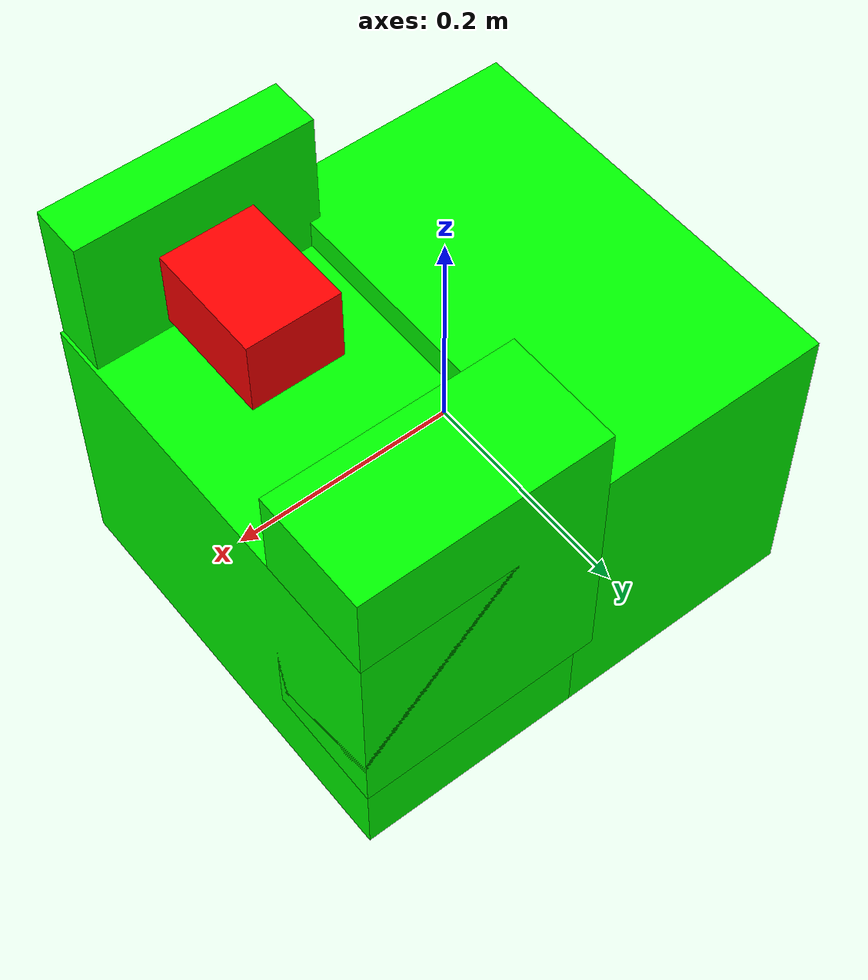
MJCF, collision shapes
<mujoco model="coffee_machine_24">
  <compiler autolimits="true" boundmass="0.01" angle="radian"/>
  <default>
    <default class="/">
      <default class="__VISUAL_MJT__">
        <geom contype="0" conaffinity="0" group="0"/>
      </default>
      <default class="__STRUCTURAL_MJT__">
        <geom contype="8" conaffinity="15" group="4" friction="0.90000000000000002 0.90000000000000002 0.001" solref="0.025000000000000001 1" solimp="0.998 0.998 0.001"/>
      </default>
      <default class="__DYNAMIC_MJT__">
        <geom contype="1" conaffinity="15" group="4" friction="0.90000000000000002 0.90000000000000002 0.001" solref="0.025000000000000001 1" solimp="0.998 0.998 0.001"/>
      </default>
    </default>
  </default>
  <asset>
    <material name="material_coffee_machine_backup_mat" class="/" specular="0.5" shininess="0.5" rgba="0.5 0.5 0.5 1"/>
    <material name="material_Coffee_Machine_Readout_Mat_Off" class="/" specular="0.5" shininess="0.5" rgba="0 0 0 1"/>
    <texture name="Coffee_Machine_Decal_Mat" type="2d" file="Coffee_Machine_Decal_AlbedoTransparency.png"/>
    <material name="material_Coffee_Machine_Decal_Mat" class="/" texture="Coffee_Machine_Decal_Mat" specular="0.5" shininess="0.5" rgba="1 1 1 1"/>
    <texture name="Coffee_Machine_Metal_Mat" type="2d" file="MetalBumpy_AlbedoTransparency.png"/>
    <material name="material_Coffee_Machine_Metal_Mat" class="/" texture="Coffee_Machine_Metal_Mat" specular="0.5" shininess="0.5" rgba="0.66176469999999998 0.66176469999999998 0.66176469999999998 1"/>
    <texture name="Coffee_Machine_Secondary4_Color_Mat" type="2d" file="BrushedIron_AlbedoTransparency.png"/>
    <material name="material_Coffee_Machine_Secondary4_Color_Mat" class="/" texture="Coffee_Machine_Secondary4_Color_Mat" specular="0.5" shininess="0.5" rgba="0.72058820000000001 0.72058820000000001 0.72058820000000001 1"/>
    <texture name="Coffee_Machine_Primary4_Color_Mat" type="2d" file="BumpyPlastic_Albedo.png"/>
    <material name="material_Coffee_Machine_Primary4_Color_Mat" class="/" texture="Coffee_Machine_Primary4_Color_Mat" specular="0.5" shininess="0.5" rgba="0.64705880000000005 0.64705880000000005 0.64705880000000005 1"/>
    <mesh name="coffee_machine_24_coffee_machine_24_0" class="/" file="coffee_machine_24_coffee_machine_24/coffee_machine_24_coffee_machine_24_0.obj" scale="1 1 1"/>
    <mesh name="coffee_machine_24_coffee_machine_24_1" class="/" file="coffee_machine_24_coffee_machine_24/coffee_machine_24_coffee_machine_24_1.obj" scale="1 1 1"/>
    <mesh name="coffee_machine_24_coffee_machine_24_2" class="/" file="coffee_machine_24_coffee_machine_24/coffee_machine_24_coffee_machine_24_2.obj" scale="1 1 1"/>
    <mesh name="coffee_machine_24_coffee_machine_24_3" class="/" file="coffee_machine_24_coffee_machine_24/coffee_machine_24_coffee_machine_24_3.obj" scale="1 1 1"/>
    <mesh name="coffee_machine_24_coffee_machine_24_4" class="/" file="coffee_machine_24_coffee_machine_24/coffee_machine_24_coffee_machine_24_4.obj" scale="1 1 1"/>
    <mesh name="coffee_machine_24_coffee_machine_24_5" class="/" file="coffee_machine_24_coffee_machine_24/coffee_machine_24_coffee_machine_24_5.obj" scale="1 1 1"/>
  </asset>
  <worldbody>
    <body name="coffee_machine_24">
      <joint name="coffee_machine_24_free" class="/" type="free" pos="0 0 0" axis="0 0 1" stiffness="0" range="0 0" armature="0" damping="0.10000000000000001" frictionloss="0"/>
      <body name="coffee_machine_24_coffee_machine_24" pos="-0.00114 -0.21033999966472389 -0.057759999999999999" quat="1 0 0 0">
        <geom name="coffee_machine_24_coffee_machine_24_0" class="__VISUAL_MJT__" type="mesh" material="material_coffee_machine_backup_mat" shellinertia="true" mesh="coffee_machine_24_coffee_machine_24_0"/>
        <geom name="coffee_machine_24_coffee_machine_24_1" class="__VISUAL_MJT__" type="mesh" material="material_Coffee_Machine_Readout_Mat_Off" shellinertia="true" mesh="coffee_machine_24_coffee_machine_24_1"/>
        <geom name="coffee_machine_24_coffee_machine_24_2" class="__VISUAL_MJT__" type="mesh" material="material_Coffee_Machine_Decal_Mat" shellinertia="false" mesh="coffee_machine_24_coffee_machine_24_2"/>
        <geom name="coffee_machine_24_coffee_machine_24_3" class="__VISUAL_MJT__" type="mesh" material="material_Coffee_Machine_Metal_Mat" shellinertia="false" mesh="coffee_machine_24_coffee_machine_24_3"/>
        <geom name="coffee_machine_24_coffee_machine_24_4" class="__VISUAL_MJT__" type="mesh" material="material_Coffee_Machine_Secondary4_Color_Mat" shellinertia="false" mesh="coffee_machine_24_coffee_machine_24_4"/>
        <geom name="coffee_machine_24_coffee_machine_24_5" class="__VISUAL_MJT__" type="mesh" material="material_Coffee_Machine_Primary4_Color_Mat" shellinertia="false" mesh="coffee_machine_24_coffee_machine_24_5"/>
        <site name="coffee_machine_24_Receptacle_0" class="/" type="box" rgba="1 0 0 1" size="0.043562762439250946 0.056437134742736816 0.036664754152297974" pos="0.10610000044107437 0.1074371337890625 0.17139999568462372" quat="1 0 0 0"/>
        <geom name="coffee_machine_24_PrimitiveCollider_0" class="__DYNAMIC_MJT__" type="box" size="0.11624303460121155 0.19533967971801758 0.14738085865974426" rgba="0 1 0 1" pos="-0.1055963933467865 0.19533967971801758 0.0027928054332733154" quat="1 0 0 0"/>
        <geom name="coffee_machine_24_PrimitiveCollider_1" class="__DYNAMIC_MJT__" type="box" size="0.11442089080810547 0.19533967971801758 0.13355210423469543" rgba="0 1 0 1" pos="0.10514974594116211 0.19533967971801758 -0.011035948991775513" quat="1 0 0 0"/>
        <geom name="coffee_machine_24_PrimitiveCollider_2" class="__DYNAMIC_MJT__" type="box" size="0.10776936262845993 0.024653315544128418 0.2023485004901886" rgba="0 1 0 1" pos="0.10872828215360641 0.024653315544128418 0.057760447263717651" quat="1 0 0 0"/>
        <geom name="coffee_machine_24_PrimitiveCollider_3" class="__DYNAMIC_MJT__" type="box" size="0.11442089080810547 0.056212365627288818 0.14096879959106445" rgba="0 1 0 1" pos="0.10514974594116211 0.33446699380874634 0.069013595581054688" quat="1 0 0 0"/>
      </body>
    </body>
  </worldbody>
</mujoco>
